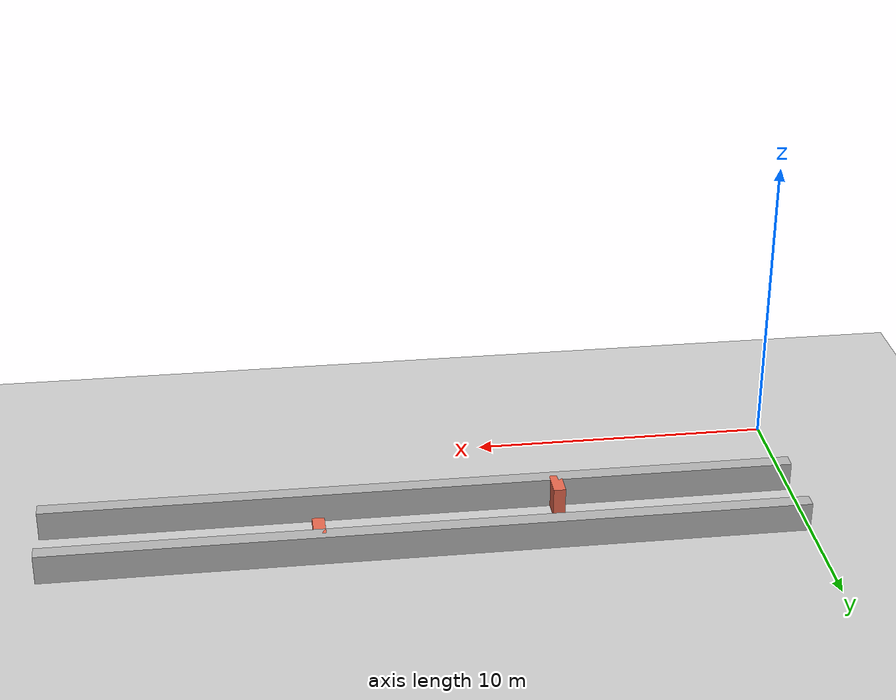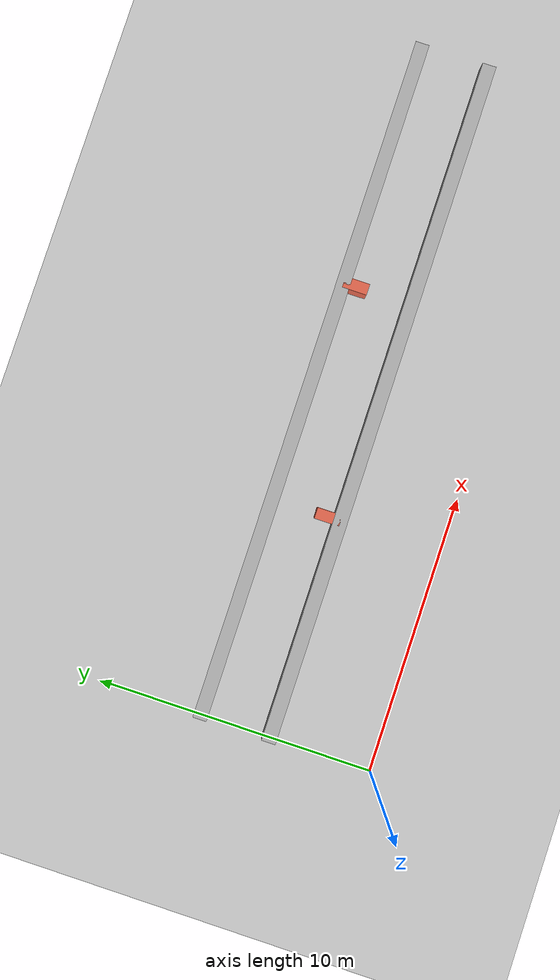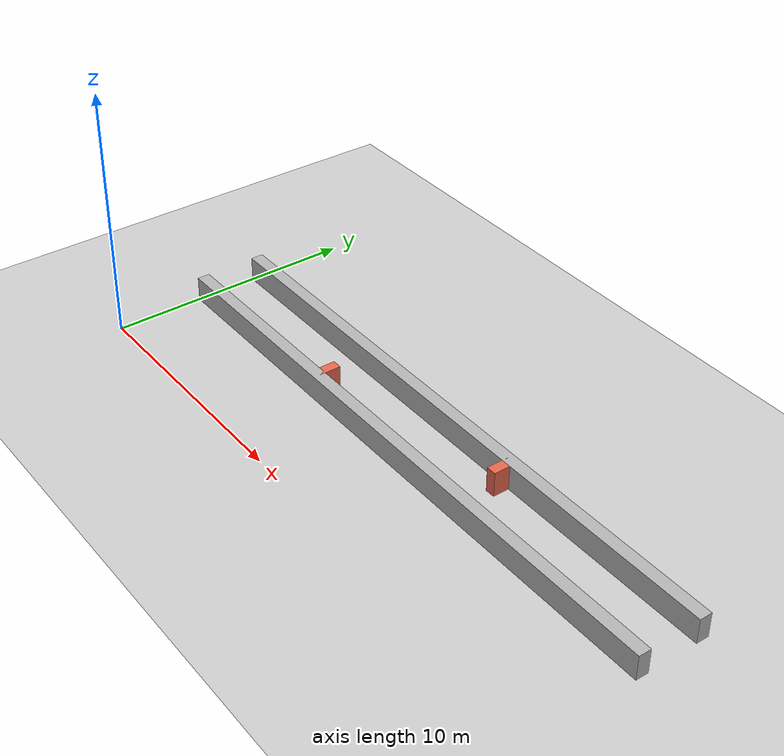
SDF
<sdf version="1.6">
 <world name="tb3_corridor">
  <physics type="ode"><max_step_size>0.001</max_step_size><real_time_factor>1</real_time_factor></physics>
  <include><uri>model://sun</uri></include>
  <include><uri>model://ground_plane</uri></include>
  <model name="top_wall">
   <static>true</static>
   <pose>12.5 6.25 0.5 0 0 0</pose>
   <link name="link">
    <collision name="c"><geometry><box><size>25 0.5 1</size></box></geometry></collision>
    <visual name="v">
     <geometry><box><size>25 0.5 1</size></box></geometry>
     <material><ambient>0.7 0.7 0.7 1</ambient></material>
    </visual>
   </link>
  </model>
  <model name="bottom_wall">
   <static>true</static>
   <pose>12.5 3.75 0.5 0 0 0</pose>
   <link name="link">
    <collision name="c"><geometry><box><size>25 0.5 1</size></box></geometry></collision>
    <visual name="v">
     <geometry><box><size>25 0.5 1</size></box></geometry>
     <material><ambient>0.7 0.7 0.7 1</ambient></material>
    </visual>
   </link>
  </model>
  <model name="obs_1">
   <static>true</static>
   <pose>8 4.2 0.5 0 0 0</pose>
   <link name="link">
    <collision name="c"><geometry><box><size>0.4 0.9 1</size></box></geometry></collision>
    <visual name="v">
     <geometry><box><size>0.4 0.9 1</size></box></geometry>
     <material><ambient>0.9 0.4 0.3 1</ambient></material>
    </visual>
   </link>
  </model>
  <model name="obs_2">
   <static>true</static>
   <pose>16 5.8 0.5 0 0 0</pose>
   <link name="link">
    <collision name="c"><geometry><box><size>0.4 0.9 1</size></box></geometry></collision>
    <visual name="v">
     <geometry><box><size>0.4 0.9 1</size></box></geometry>
     <material><ambient>0.9 0.4 0.3 1</ambient></material>
    </visual>
   </link>
  </model>
 </world>
</sdf>
